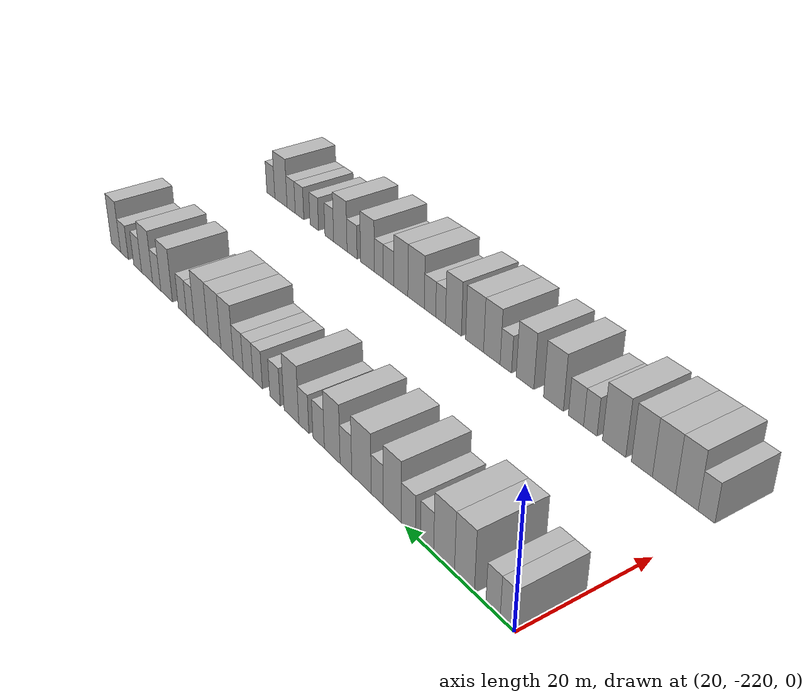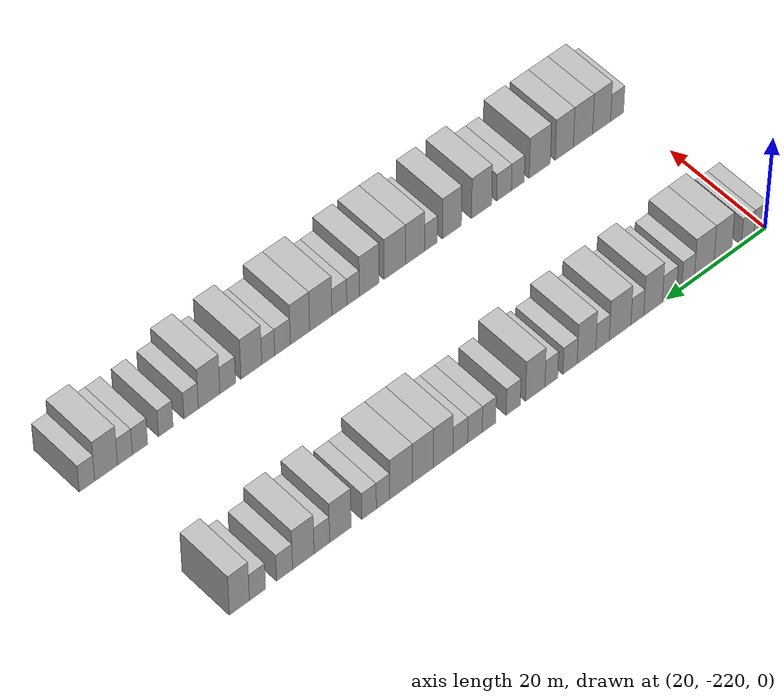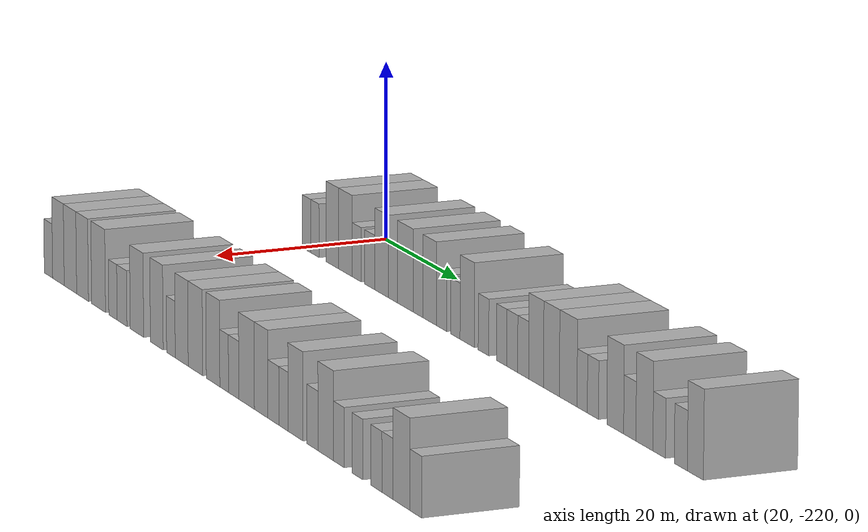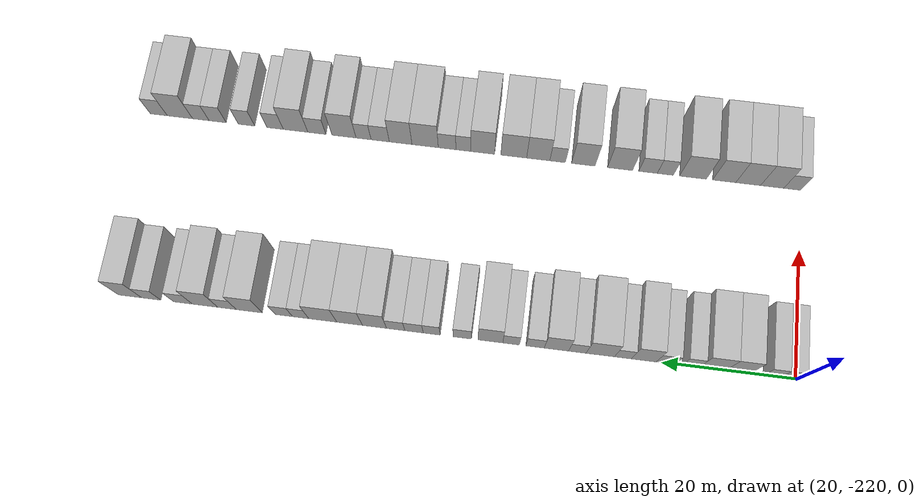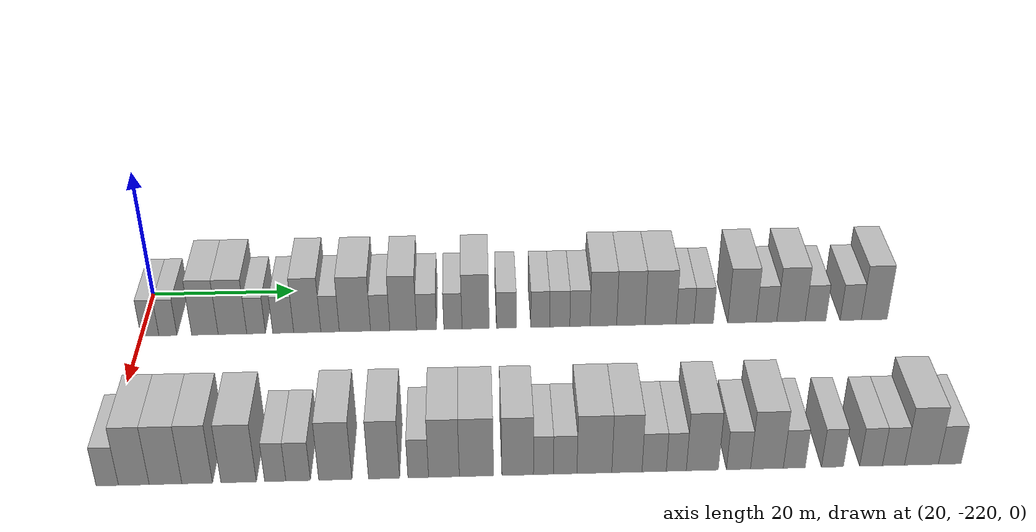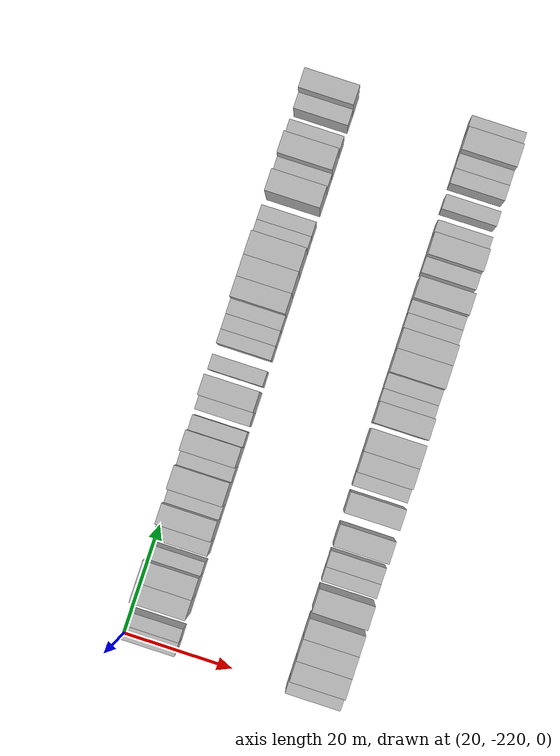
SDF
<sdf version="1.6">
 <world name="default">
  <model name="building_1">
   <static>1</static>
   <pose>25.0000 -218.7724 0 0.000000 0.000000 0.000000</pose>
   <link name="link">
    <pose>0 0 3.00 0 0 0</pose>
    <collision name="collision"><geometry><box><size>10.0000 2.4552 6.0000</size></box></geometry></collision>
    <visual name="visual">
     <cast_shadows>0</cast_shadows>
     <geometry><box><size>10.0000 2.4552 6.0000</size></box></geometry>
     <material>
      <script>
       <uri>model://HANNAS_wall/materials/scripts</uri>
       <uri>model://HANNAS_wall/materials/textures</uri>
       <name>vrc/HANNAS_wall</name>
      </script>
     </material>
    </visual>
   </link>
  </model>
  <model name="building_2">
   <static>1</static>
   <pose>25.0000 -216.3096 0 0.000000 0.000000 0.000000</pose>
   <link name="link">
    <pose>0 0 3.00 0 0 0</pose>
    <collision name="collision"><geometry><box><size>10.0000 2.4703 6.0000</size></box></geometry></collision>
    <visual name="visual">
     <cast_shadows>0</cast_shadows>
     <geometry><box><size>10.0000 2.4703 6.0000</size></box></geometry>
     <material>
      <script>
       <uri>model://HANNAS_wall/materials/scripts</uri>
       <uri>model://HANNAS_wall/materials/textures</uri>
       <name>vrc/HANNAS_wall</name>
      </script>
     </material>
    </visual>
   </link>
  </model>
  <model name="building_3">
   <static>1</static>
   <pose>25.0000 -211.2696 0 0.000000 0.000000 0.000000</pose>
   <link name="link">
    <pose>0 0 4.50 0 0 0</pose>
    <collision name="collision"><geometry><box><size>10.0000 3.6098 9.0000</size></box></geometry></collision>
    <visual name="visual">
     <cast_shadows>0</cast_shadows>
     <geometry><box><size>10.0000 3.6098 9.0000</size></box></geometry>
     <material>
      <script>
       <uri>model://HANNAS_wall/materials/scripts</uri>
       <uri>model://HANNAS_wall/materials/textures</uri>
       <name>vrc/HANNAS_wall</name>
      </script>
     </material>
    </visual>
   </link>
  </model>
  <model name="building_4">
   <static>1</static>
   <pose>25.0000 -207.5078 0 0.000000 0.000000 0.000000</pose>
   <link name="link">
    <pose>0 0 4.50 0 0 0</pose>
    <collision name="collision"><geometry><box><size>10.0000 3.9137 9.0000</size></box></geometry></collision>
    <visual name="visual">
     <cast_shadows>0</cast_shadows>
     <geometry><box><size>10.0000 3.9137 9.0000</size></box></geometry>
     <material>
      <script>
       <uri>model://HANNAS_wall/materials/scripts</uri>
       <uri>model://HANNAS_wall/materials/textures</uri>
       <name>vrc/HANNAS_wall</name>
      </script>
     </material>
    </visual>
   </link>
  </model>
  <model name="building_5">
   <static>1</static>
   <pose>25.0000 -204.2752 0 0.000000 0.000000 0.000000</pose>
   <link name="link">
    <pose>0 0 3.00 0 0 0</pose>
    <collision name="collision"><geometry><box><size>10.0000 2.5516 6.0000</size></box></geometry></collision>
    <visual name="visual">
     <cast_shadows>0</cast_shadows>
     <geometry><box><size>10.0000 2.5516 6.0000</size></box></geometry>
     <material>
      <script>
       <uri>model://HANNAS_wall/materials/scripts</uri>
       <uri>model://HANNAS_wall/materials/textures</uri>
       <name>vrc/HANNAS_wall</name>
      </script>
     </material>
    </visual>
   </link>
  </model>
  <model name="building_6">
   <static>1</static>
   <pose>25.0000 -200.5648 0 0.000000 0.000000 0.000000</pose>
   <link name="link">
    <pose>0 0 3.00 0 0 0</pose>
    <collision name="collision"><geometry><box><size>10.0000 2.8691 6.0000</size></box></geometry></collision>
    <visual name="visual">
     <cast_shadows>0</cast_shadows>
     <geometry><box><size>10.0000 2.8691 6.0000</size></box></geometry>
     <material>
      <script>
       <uri>model://HANNAS_wall/materials/scripts</uri>
       <uri>model://HANNAS_wall/materials/textures</uri>
       <name>vrc/HANNAS_wall</name>
      </script>
     </material>
    </visual>
   </link>
  </model>
  <model name="building_7">
   <static>1</static>
   <pose>25.0000 -197.2733 0 0.000000 0.000000 0.000000</pose>
   <link name="link">
    <pose>0 0 4.50 0 0 0</pose>
    <collision name="collision"><geometry><box><size>10.0000 3.7139 9.0000</size></box></geometry></collision>
    <visual name="visual">
     <cast_shadows>0</cast_shadows>
     <geometry><box><size>10.0000 3.7139 9.0000</size></box></geometry>
     <material>
      <script>
       <uri>model://HANNAS_wall/materials/scripts</uri>
       <uri>model://HANNAS_wall/materials/textures</uri>
       <name>vrc/HANNAS_wall</name>
      </script>
     </material>
    </visual>
   </link>
  </model>
  <model name="building_8">
   <static>1</static>
   <pose>25.0000 -194.1472 0 0.000000 0.000000 0.000000</pose>
   <link name="link">
    <pose>0 0 3.00 0 0 0</pose>
    <collision name="collision"><geometry><box><size>10.0000 2.5385 6.0000</size></box></geometry></collision>
    <visual name="visual">
     <cast_shadows>0</cast_shadows>
     <geometry><box><size>10.0000 2.5385 6.0000</size></box></geometry>
     <material>
      <script>
       <uri>model://HANNAS_wall/materials/scripts</uri>
       <uri>model://HANNAS_wall/materials/textures</uri>
       <name>vrc/HANNAS_wall</name>
      </script>
     </material>
    </visual>
   </link>
  </model>
  <model name="building_9">
   <static>1</static>
   <pose>25.0000 -190.7358 0 0.000000 0.000000 0.000000</pose>
   <link name="link">
    <pose>0 0 4.50 0 0 0</pose>
    <collision name="collision"><geometry><box><size>10.0000 4.2843 9.0000</size></box></geometry></collision>
    <visual name="visual">
     <cast_shadows>0</cast_shadows>
     <geometry><box><size>10.0000 4.2843 9.0000</size></box></geometry>
     <material>
      <script>
       <uri>model://HANNAS_wall/materials/scripts</uri>
       <uri>model://HANNAS_wall/materials/textures</uri>
       <name>vrc/HANNAS_wall</name>
      </script>
     </material>
    </visual>
   </link>
  </model>
  <model name="building_10">
   <static>1</static>
   <pose>25.0000 -187.2706 0 0.000000 0.000000 0.000000</pose>
   <link name="link">
    <pose>0 0 3.00 0 0 0</pose>
    <collision name="collision"><geometry><box><size>10.0000 2.6461 6.0000</size></box></geometry></collision>
    <visual name="visual">
     <cast_shadows>0</cast_shadows>
     <geometry><box><size>10.0000 2.6461 6.0000</size></box></geometry>
     <material>
      <script>
       <uri>model://HANNAS_wall/materials/scripts</uri>
       <uri>model://HANNAS_wall/materials/textures</uri>
       <name>vrc/HANNAS_wall</name>
      </script>
     </material>
    </visual>
   </link>
  </model>
  <model name="building_11">
   <static>1</static>
   <pose>25.0000 -184.1075 0 0.000000 0.000000 0.000000</pose>
   <link name="link">
    <pose>0 0 4.50 0 0 0</pose>
    <collision name="collision"><geometry><box><size>10.0000 3.6802 9.0000</size></box></geometry></collision>
    <visual name="visual">
     <cast_shadows>0</cast_shadows>
     <geometry><box><size>10.0000 3.6802 9.0000</size></box></geometry>
     <material>
      <script>
       <uri>model://HANNAS_wall/materials/scripts</uri>
       <uri>model://HANNAS_wall/materials/textures</uri>
       <name>vrc/HANNAS_wall</name>
      </script>
     </material>
    </visual>
   </link>
  </model>
  <model name="building_12">
   <static>1</static>
   <pose>25.0000 -180.8865 0 0.000000 0.000000 0.000000</pose>
   <link name="link">
    <pose>0 0 3.00 0 0 0</pose>
    <collision name="collision"><geometry><box><size>10.0000 2.7617 6.0000</size></box></geometry></collision>
    <visual name="visual">
     <cast_shadows>0</cast_shadows>
     <geometry><box><size>10.0000 2.7617 6.0000</size></box></geometry>
     <material>
      <script>
       <uri>model://HANNAS_wall/materials/scripts</uri>
       <uri>model://HANNAS_wall/materials/textures</uri>
       <name>vrc/HANNAS_wall</name>
      </script>
     </material>
    </visual>
   </link>
  </model>
  <model name="building_13">
   <static>1</static>
   <pose>25.0000 -177.2530 0 0.000000 0.000000 0.000000</pose>
   <link name="link">
    <pose>0 0 3.00 0 0 0</pose>
    <collision name="collision"><geometry><box><size>10.0000 2.5054 6.0000</size></box></geometry></collision>
    <visual name="visual">
     <cast_shadows>0</cast_shadows>
     <geometry><box><size>10.0000 2.5054 6.0000</size></box></geometry>
     <material>
      <script>
       <uri>model://HANNAS_wall/materials/scripts</uri>
       <uri>model://HANNAS_wall/materials/textures</uri>
       <name>vrc/HANNAS_wall</name>
      </script>
     </material>
    </visual>
   </link>
  </model>
  <model name="building_14">
   <static>1</static>
   <pose>25.0000 -174.1250 0 0.000000 0.000000 0.000000</pose>
   <link name="link">
    <pose>0 0 4.50 0 0 0</pose>
    <collision name="collision"><geometry><box><size>10.0000 3.7505 9.0000</size></box></geometry></collision>
    <visual name="visual">
     <cast_shadows>0</cast_shadows>
     <geometry><box><size>10.0000 3.7505 9.0000</size></box></geometry>
     <material>
      <script>
       <uri>model://HANNAS_wall/materials/scripts</uri>
       <uri>model://HANNAS_wall/materials/textures</uri>
       <name>vrc/HANNAS_wall</name>
      </script>
     </material>
    </visual>
   </link>
  </model>
  <model name="building_15">
   <static>1</static>
   <pose>25.0000 -169.8699 0 0.000000 0.000000 0.000000</pose>
   <link name="link">
    <pose>0 0 3.00 0 0 0</pose>
    <collision name="collision"><geometry><box><size>10.0000 2.7595 6.0000</size></box></geometry></collision>
    <visual name="visual">
     <cast_shadows>0</cast_shadows>
     <geometry><box><size>10.0000 2.7595 6.0000</size></box></geometry>
     <material>
      <script>
       <uri>model://HANNAS_wall/materials/scripts</uri>
       <uri>model://HANNAS_wall/materials/textures</uri>
       <name>vrc/HANNAS_wall</name>
      </script>
     </material>
    </visual>
   </link>
  </model>
  <model name="building_16">
   <static>1</static>
   <pose>25.0000 -165.1983 0 0.000000 0.000000 0.000000</pose>
   <link name="link">
    <pose>0 0 3.00 0 0 0</pose>
    <collision name="collision"><geometry><box><size>10.0000 2.5838 6.0000</size></box></geometry></collision>
    <visual name="visual">
     <cast_shadows>0</cast_shadows>
     <geometry><box><size>10.0000 2.5838 6.0000</size></box></geometry>
     <material>
      <script>
       <uri>model://HANNAS_wall/materials/scripts</uri>
       <uri>model://HANNAS_wall/materials/textures</uri>
       <name>vrc/HANNAS_wall</name>
      </script>
     </material>
    </visual>
   </link>
  </model>
  <model name="building_17">
   <static>1</static>
   <pose>25.0000 -162.5082 0 0.000000 0.000000 0.000000</pose>
   <link name="link">
    <pose>0 0 3.00 0 0 0</pose>
    <collision name="collision"><geometry><box><size>10.0000 2.7964 6.0000</size></box></geometry></collision>
    <visual name="visual">
     <cast_shadows>0</cast_shadows>
     <geometry><box><size>10.0000 2.7964 6.0000</size></box></geometry>
     <material>
      <script>
       <uri>model://HANNAS_wall/materials/scripts</uri>
       <uri>model://HANNAS_wall/materials/textures</uri>
       <name>vrc/HANNAS_wall</name>
      </script>
     </material>
    </visual>
   </link>
  </model>
  <model name="building_18">
   <static>1</static>
   <pose>25.0000 -159.7110 0 0.000000 0.000000 0.000000</pose>
   <link name="link">
    <pose>0 0 3.00 0 0 0</pose>
    <collision name="collision"><geometry><box><size>10.0000 2.7979 6.0000</size></box></geometry></collision>
    <visual name="visual">
     <cast_shadows>0</cast_shadows>
     <geometry><box><size>10.0000 2.7979 6.0000</size></box></geometry>
     <material>
      <script>
       <uri>model://HANNAS_wall/materials/scripts</uri>
       <uri>model://HANNAS_wall/materials/textures</uri>
       <name>vrc/HANNAS_wall</name>
      </script>
     </material>
    </visual>
   </link>
  </model>
  <model name="building_19">
   <static>1</static>
   <pose>25.0000 -156.4629 0 0.000000 0.000000 0.000000</pose>
   <link name="link">
    <pose>0 0 4.50 0 0 0</pose>
    <collision name="collision"><geometry><box><size>10.0000 3.6983 9.0000</size></box></geometry></collision>
    <visual name="visual">
     <cast_shadows>0</cast_shadows>
     <geometry><box><size>10.0000 3.6983 9.0000</size></box></geometry>
     <material>
      <script>
       <uri>model://HANNAS_wall/materials/scripts</uri>
       <uri>model://HANNAS_wall/materials/textures</uri>
       <name>vrc/HANNAS_wall</name>
      </script>
     </material>
    </visual>
   </link>
  </model>
  <model name="building_20">
   <static>1</static>
   <pose>25.0000 -152.6454 0 0.000000 0.000000 0.000000</pose>
   <link name="link">
    <pose>0 0 4.50 0 0 0</pose>
    <collision name="collision"><geometry><box><size>10.0000 3.9368 9.0000</size></box></geometry></collision>
    <visual name="visual">
     <cast_shadows>0</cast_shadows>
     <geometry><box><size>10.0000 3.9368 9.0000</size></box></geometry>
     <material>
      <script>
       <uri>model://HANNAS_wall/materials/scripts</uri>
       <uri>model://HANNAS_wall/materials/textures</uri>
       <name>vrc/HANNAS_wall</name>
      </script>
     </material>
    </visual>
   </link>
  </model>
  <model name="building_21">
   <static>1</static>
   <pose>25.0000 -148.5193 0 0.000000 0.000000 0.000000</pose>
   <link name="link">
    <pose>0 0 4.50 0 0 0</pose>
    <collision name="collision"><geometry><box><size>10.0000 4.3155 9.0000</size></box></geometry></collision>
    <visual name="visual">
     <cast_shadows>0</cast_shadows>
     <geometry><box><size>10.0000 4.3155 9.0000</size></box></geometry>
     <material>
      <script>
       <uri>model://HANNAS_wall/materials/scripts</uri>
       <uri>model://HANNAS_wall/materials/textures</uri>
       <name>vrc/HANNAS_wall</name>
      </script>
     </material>
    </visual>
   </link>
  </model>
  <model name="building_22">
   <static>1</static>
   <pose>25.0000 -145.1118 0 0.000000 0.000000 0.000000</pose>
   <link name="link">
    <pose>0 0 3.00 0 0 0</pose>
    <collision name="collision"><geometry><box><size>10.0000 2.4994 6.0000</size></box></geometry></collision>
    <visual name="visual">
     <cast_shadows>0</cast_shadows>
     <geometry><box><size>10.0000 2.4994 6.0000</size></box></geometry>
     <material>
      <script>
       <uri>model://HANNAS_wall/materials/scripts</uri>
       <uri>model://HANNAS_wall/materials/textures</uri>
       <name>vrc/HANNAS_wall</name>
      </script>
     </material>
    </visual>
   </link>
  </model>
  <model name="building_23">
   <static>1</static>
   <pose>25.0000 -142.5120 0 0.000000 0.000000 0.000000</pose>
   <link name="link">
    <pose>0 0 3.00 0 0 0</pose>
    <collision name="collision"><geometry><box><size>10.0000 2.7002 6.0000</size></box></geometry></collision>
    <visual name="visual">
     <cast_shadows>0</cast_shadows>
     <geometry><box><size>10.0000 2.7002 6.0000</size></box></geometry>
     <material>
      <script>
       <uri>model://HANNAS_wall/materials/scripts</uri>
       <uri>model://HANNAS_wall/materials/textures</uri>
       <name>vrc/HANNAS_wall</name>
      </script>
     </material>
    </visual>
   </link>
  </model>
  <model name="building_24">
   <static>1</static>
   <pose>25.0000 -137.1737 0 0.000000 0.000000 0.000000</pose>
   <link name="link">
    <pose>0 0 4.50 0 0 0</pose>
    <collision name="collision"><geometry><box><size>10.0000 3.9764 9.0000</size></box></geometry></collision>
    <visual name="visual">
     <cast_shadows>0</cast_shadows>
     <geometry><box><size>10.0000 3.9764 9.0000</size></box></geometry>
     <material>
      <script>
       <uri>model://HANNAS_wall/materials/scripts</uri>
       <uri>model://HANNAS_wall/materials/textures</uri>
       <name>vrc/HANNAS_wall</name>
      </script>
     </material>
    </visual>
   </link>
  </model>
  <model name="building_25">
   <static>1</static>
   <pose>25.0000 -133.7473 0 0.000000 0.000000 0.000000</pose>
   <link name="link">
    <pose>0 0 3.00 0 0 0</pose>
    <collision name="collision"><geometry><box><size>10.0000 2.8764 6.0000</size></box></geometry></collision>
    <visual name="visual">
     <cast_shadows>0</cast_shadows>
     <geometry><box><size>10.0000 2.8764 6.0000</size></box></geometry>
     <material>
      <script>
       <uri>model://HANNAS_wall/materials/scripts</uri>
       <uri>model://HANNAS_wall/materials/textures</uri>
       <name>vrc/HANNAS_wall</name>
      </script>
     </material>
    </visual>
   </link>
  </model>
  <model name="building_26">
   <static>1</static>
   <pose>25.0000 -130.3267 0 0.000000 0.000000 0.000000</pose>
   <link name="link">
    <pose>0 0 4.50 0 0 0</pose>
    <collision name="collision"><geometry><box><size>10.0000 3.9649 9.0000</size></box></geometry></collision>
    <visual name="visual">
     <cast_shadows>0</cast_shadows>
     <geometry><box><size>10.0000 3.9649 9.0000</size></box></geometry>
     <material>
      <script>
       <uri>model://HANNAS_wall/materials/scripts</uri>
       <uri>model://HANNAS_wall/materials/textures</uri>
       <name>vrc/HANNAS_wall</name>
      </script>
     </material>
    </visual>
   </link>
  </model>
  <model name="building_27">
   <static>1</static>
   <pose>25.0000 -126.8843 0 0.000000 0.000000 0.000000</pose>
   <link name="link">
    <pose>0 0 3.00 0 0 0</pose>
    <collision name="collision"><geometry><box><size>10.0000 2.9198 6.0000</size></box></geometry></collision>
    <visual name="visual">
     <cast_shadows>0</cast_shadows>
     <geometry><box><size>10.0000 2.9198 6.0000</size></box></geometry>
     <material>
      <script>
       <uri>model://HANNAS_wall/materials/scripts</uri>
       <uri>model://HANNAS_wall/materials/textures</uri>
       <name>vrc/HANNAS_wall</name>
      </script>
     </material>
    </visual>
   </link>
  </model>
  <model name="building_28">
   <static>1</static>
   <pose>25.0000 -121.9462 0 0.000000 0.000000 0.000000</pose>
   <link name="link">
    <pose>0 0 3.00 0 0 0</pose>
    <collision name="collision"><geometry><box><size>10.0000 2.9565 6.0000</size></box></geometry></collision>
    <visual name="visual">
     <cast_shadows>0</cast_shadows>
     <geometry><box><size>10.0000 2.9565 6.0000</size></box></geometry>
     <material>
      <script>
       <uri>model://HANNAS_wall/materials/scripts</uri>
       <uri>model://HANNAS_wall/materials/textures</uri>
       <name>vrc/HANNAS_wall</name>
      </script>
     </material>
    </visual>
   </link>
  </model>
  <model name="building_29">
   <static>1</static>
   <pose>25.0000 -118.6565 0 0.000000 0.000000 0.000000</pose>
   <link name="link">
    <pose>0 0 4.50 0 0 0</pose>
    <collision name="collision"><geometry><box><size>10.0000 3.6229 9.0000</size></box></geometry></collision>
    <visual name="visual">
     <cast_shadows>0</cast_shadows>
     <geometry><box><size>10.0000 3.6229 9.0000</size></box></geometry>
     <material>
      <script>
       <uri>model://HANNAS_wall/materials/scripts</uri>
       <uri>model://HANNAS_wall/materials/textures</uri>
       <name>vrc/HANNAS_wall</name>
      </script>
     </material>
    </visual>
   </link>
  </model>
  <model name="building_116">
   <static>1</static>
   <pose>55.0000 -218.6695 0 0.000000 0.000000 0.000000</pose>
   <link name="link">
    <pose>0 0 3.00 0 0 0</pose>
    <collision name="collision"><geometry><box><size>10.0000 2.6609 6.0000</size></box></geometry></collision>
    <visual name="visual">
     <cast_shadows>0</cast_shadows>
     <geometry><box><size>10.0000 2.6609 6.0000</size></box></geometry>
     <material>
      <script>
       <uri>model://HANNAS_wall/materials/scripts</uri>
       <uri>model://HANNAS_wall/materials/textures</uri>
       <name>vrc/HANNAS_wall</name>
      </script>
     </material>
    </visual>
   </link>
  </model>
  <model name="building_117">
   <static>1</static>
   <pose>55.0000 -215.5062 0 0.000000 0.000000 0.000000</pose>
   <link name="link">
    <pose>0 0 4.50 0 0 0</pose>
    <collision name="collision"><geometry><box><size>10.0000 3.6659 9.0000</size></box></geometry></collision>
    <visual name="visual">
     <cast_shadows>0</cast_shadows>
     <geometry><box><size>10.0000 3.6659 9.0000</size></box></geometry>
     <material>
      <script>
       <uri>model://HANNAS_wall/materials/scripts</uri>
       <uri>model://HANNAS_wall/materials/textures</uri>
       <name>vrc/HANNAS_wall</name>
      </script>
     </material>
    </visual>
   </link>
  </model>
  <model name="building_118">
   <static>1</static>
   <pose>55.0000 -211.7166 0 0.000000 0.000000 0.000000</pose>
   <link name="link">
    <pose>0 0 4.50 0 0 0</pose>
    <collision name="collision"><geometry><box><size>10.0000 3.9132 9.0000</size></box></geometry></collision>
    <visual name="visual">
     <cast_shadows>0</cast_shadows>
     <geometry><box><size>10.0000 3.9132 9.0000</size></box></geometry>
     <material>
      <script>
       <uri>model://HANNAS_wall/materials/scripts</uri>
       <uri>model://HANNAS_wall/materials/textures</uri>
       <name>vrc/HANNAS_wall</name>
      </script>
     </material>
    </visual>
   </link>
  </model>
  <model name="building_119">
   <static>1</static>
   <pose>55.0000 -207.9279 0 0.000000 0.000000 0.000000</pose>
   <link name="link">
    <pose>0 0 4.50 0 0 0</pose>
    <collision name="collision"><geometry><box><size>10.0000 3.6643 9.0000</size></box></geometry></collision>
    <visual name="visual">
     <cast_shadows>0</cast_shadows>
     <geometry><box><size>10.0000 3.6643 9.0000</size></box></geometry>
     <material>
      <script>
       <uri>model://HANNAS_wall/materials/scripts</uri>
       <uri>model://HANNAS_wall/materials/textures</uri>
       <name>vrc/HANNAS_wall</name>
      </script>
     </material>
    </visual>
   </link>
  </model>
  <model name="building_120">
   <static>1</static>
   <pose>55.0000 -202.9664 0 0.000000 0.000000 0.000000</pose>
   <link name="link">
    <pose>0 0 4.50 0 0 0</pose>
    <collision name="collision"><geometry><box><size>10.0000 4.2587 9.0000</size></box></geometry></collision>
    <visual name="visual">
     <cast_shadows>0</cast_shadows>
     <geometry><box><size>10.0000 4.2587 9.0000</size></box></geometry>
     <material>
      <script>
       <uri>model://HANNAS_wall/materials/scripts</uri>
       <uri>model://HANNAS_wall/materials/textures</uri>
       <name>vrc/HANNAS_wall</name>
      </script>
     </material>
    </visual>
   </link>
  </model>
  <model name="building_121">
   <static>1</static>
   <pose>55.0000 -198.5659 0 0.000000 0.000000 0.000000</pose>
   <link name="link">
    <pose>0 0 3.00 0 0 0</pose>
    <collision name="collision"><geometry><box><size>10.0000 2.5424 6.0000</size></box></geometry></collision>
    <visual name="visual">
     <cast_shadows>0</cast_shadows>
     <geometry><box><size>10.0000 2.5424 6.0000</size></box></geometry>
     <material>
      <script>
       <uri>model://HANNAS_wall/materials/scripts</uri>
       <uri>model://HANNAS_wall/materials/textures</uri>
       <name>vrc/HANNAS_wall</name>
      </script>
     </material>
    </visual>
   </link>
  </model>
  <model name="building_122">
   <static>1</static>
   <pose>55.0000 -195.8216 0 0.000000 0.000000 0.000000</pose>
   <link name="link">
    <pose>0 0 3.00 0 0 0</pose>
    <collision name="collision"><geometry><box><size>10.0000 2.9461 6.0000</size></box></geometry></collision>
    <visual name="visual">
     <cast_shadows>0</cast_shadows>
     <geometry><box><size>10.0000 2.9461 6.0000</size></box></geometry>
     <material>
      <script>
       <uri>model://HANNAS_wall/materials/scripts</uri>
       <uri>model://HANNAS_wall/materials/textures</uri>
       <name>vrc/HANNAS_wall</name>
      </script>
     </material>
    </visual>
   </link>
  </model>
  <model name="building_123">
   <static>1</static>
   <pose>55.0000 -191.3488 0 0.000000 0.000000 0.000000</pose>
   <link name="link">
    <pose>0 0 4.50 0 0 0</pose>
    <collision name="collision"><geometry><box><size>10.0000 3.9995 9.0000</size></box></geometry></collision>
    <visual name="visual">
     <cast_shadows>0</cast_shadows>
     <geometry><box><size>10.0000 3.9995 9.0000</size></box></geometry>
     <material>
      <script>
       <uri>model://HANNAS_wall/materials/scripts</uri>
       <uri>model://HANNAS_wall/materials/textures</uri>
       <name>vrc/HANNAS_wall</name>
      </script>
     </material>
    </visual>
   </link>
  </model>
  <model name="building_124">
   <static>1</static>
   <pose>55.0000 -185.4743 0 0.000000 0.000000 0.000000</pose>
   <link name="link">
    <pose>0 0 4.50 0 0 0</pose>
    <collision name="collision"><geometry><box><size>10.0000 3.7495 9.0000</size></box></geometry></collision>
    <visual name="visual">
     <cast_shadows>0</cast_shadows>
     <geometry><box><size>10.0000 3.7495 9.0000</size></box></geometry>
     <material>
      <script>
       <uri>model://HANNAS_wall/materials/scripts</uri>
       <uri>model://HANNAS_wall/materials/textures</uri>
       <name>vrc/HANNAS_wall</name>
      </script>
     </material>
    </visual>
   </link>
  </model>
  <model name="building_125">
   <static>1</static>
   <pose>55.0000 -181.3504 0 0.000000 0.000000 0.000000</pose>
   <link name="link">
    <pose>0 0 3.00 0 0 0</pose>
    <collision name="collision"><geometry><box><size>10.0000 2.4983 6.0000</size></box></geometry></collision>
    <visual name="visual">
     <cast_shadows>0</cast_shadows>
     <geometry><box><size>10.0000 2.4983 6.0000</size></box></geometry>
     <material>
      <script>
       <uri>model://HANNAS_wall/materials/scripts</uri>
       <uri>model://HANNAS_wall/materials/textures</uri>
       <name>vrc/HANNAS_wall</name>
      </script>
     </material>
    </visual>
   </link>
  </model>
  <model name="building_126">
   <static>1</static>
   <pose>55.0000 -178.2379 0 0.000000 0.000000 0.000000</pose>
   <link name="link">
    <pose>0 0 4.50 0 0 0</pose>
    <collision name="collision"><geometry><box><size>10.0000 3.7268 9.0000</size></box></geometry></collision>
    <visual name="visual">
     <cast_shadows>0</cast_shadows>
     <geometry><box><size>10.0000 3.7268 9.0000</size></box></geometry>
     <material>
      <script>
       <uri>model://HANNAS_wall/materials/scripts</uri>
       <uri>model://HANNAS_wall/materials/textures</uri>
       <name>vrc/HANNAS_wall</name>
      </script>
     </material>
    </visual>
   </link>
  </model>
  <model name="building_127">
   <static>1</static>
   <pose>55.0000 -174.3012 0 0.000000 0.000000 0.000000</pose>
   <link name="link">
    <pose>0 0 4.50 0 0 0</pose>
    <collision name="collision"><geometry><box><size>10.0000 4.1466 9.0000</size></box></geometry></collision>
    <visual name="visual">
     <cast_shadows>0</cast_shadows>
     <geometry><box><size>10.0000 4.1466 9.0000</size></box></geometry>
     <material>
      <script>
       <uri>model://HANNAS_wall/materials/scripts</uri>
       <uri>model://HANNAS_wall/materials/textures</uri>
       <name>vrc/HANNAS_wall</name>
      </script>
     </material>
    </visual>
   </link>
  </model>
  <model name="building_128">
   <static>1</static>
   <pose>55.0000 -169.3162 0 0.000000 0.000000 0.000000</pose>
   <link name="link">
    <pose>0 0 4.50 0 0 0</pose>
    <collision name="collision"><geometry><box><size>10.0000 3.8233 9.0000</size></box></geometry></collision>
    <visual name="visual">
     <cast_shadows>0</cast_shadows>
     <geometry><box><size>10.0000 3.8233 9.0000</size></box></geometry>
     <material>
      <script>
       <uri>model://HANNAS_wall/materials/scripts</uri>
       <uri>model://HANNAS_wall/materials/textures</uri>
       <name>vrc/HANNAS_wall</name>
      </script>
     </material>
    </visual>
   </link>
  </model>
  <model name="building_129">
   <static>1</static>
   <pose>55.0000 -166.1947 0 0.000000 0.000000 0.000000</pose>
   <link name="link">
    <pose>0 0 3.00 0 0 0</pose>
    <collision name="collision"><geometry><box><size>10.0000 2.4199 6.0000</size></box></geometry></collision>
    <visual name="visual">
     <cast_shadows>0</cast_shadows>
     <geometry><box><size>10.0000 2.4199 6.0000</size></box></geometry>
     <material>
      <script>
       <uri>model://HANNAS_wall/materials/scripts</uri>
       <uri>model://HANNAS_wall/materials/textures</uri>
       <name>vrc/HANNAS_wall</name>
      </script>
     </material>
    </visual>
   </link>
  </model>
  <model name="building_130">
   <static>1</static>
   <pose>55.0000 -163.5549 0 0.000000 0.000000 0.000000</pose>
   <link name="link">
    <pose>0 0 3.00 0 0 0</pose>
    <collision name="collision"><geometry><box><size>10.0000 2.8595 6.0000</size></box></geometry></collision>
    <visual name="visual">
     <cast_shadows>0</cast_shadows>
     <geometry><box><size>10.0000 2.8595 6.0000</size></box></geometry>
     <material>
      <script>
       <uri>model://HANNAS_wall/materials/scripts</uri>
       <uri>model://HANNAS_wall/materials/textures</uri>
       <name>vrc/HANNAS_wall</name>
      </script>
     </material>
    </visual>
   </link>
  </model>
  <model name="building_131">
   <static>1</static>
   <pose>55.0000 -159.9999 0 0.000000 0.000000 0.000000</pose>
   <link name="link">
    <pose>0 0 4.50 0 0 0</pose>
    <collision name="collision"><geometry><box><size>10.0000 4.2505 9.0000</size></box></geometry></collision>
    <visual name="visual">
     <cast_shadows>0</cast_shadows>
     <geometry><box><size>10.0000 4.2505 9.0000</size></box></geometry>
     <material>
      <script>
       <uri>model://HANNAS_wall/materials/scripts</uri>
       <uri>model://HANNAS_wall/materials/textures</uri>
       <name>vrc/HANNAS_wall</name>
      </script>
     </material>
    </visual>
   </link>
  </model>
  <model name="building_132">
   <static>1</static>
   <pose>55.0000 -156.0348 0 0.000000 0.000000 0.000000</pose>
   <link name="link">
    <pose>0 0 4.50 0 0 0</pose>
    <collision name="collision"><geometry><box><size>10.0000 3.6798 9.0000</size></box></geometry></collision>
    <visual name="visual">
     <cast_shadows>0</cast_shadows>
     <geometry><box><size>10.0000 3.6798 9.0000</size></box></geometry>
     <material>
      <script>
       <uri>model://HANNAS_wall/materials/scripts</uri>
       <uri>model://HANNAS_wall/materials/textures</uri>
       <name>vrc/HANNAS_wall</name>
      </script>
     </material>
    </visual>
   </link>
  </model>
  <model name="building_133">
   <static>1</static>
   <pose>55.0000 -152.7131 0 0.000000 0.000000 0.000000</pose>
   <link name="link">
    <pose>0 0 3.00 0 0 0</pose>
    <collision name="collision"><geometry><box><size>10.0000 2.9635 6.0000</size></box></geometry></collision>
    <visual name="visual">
     <cast_shadows>0</cast_shadows>
     <geometry><box><size>10.0000 2.9635 6.0000</size></box></geometry>
     <material>
      <script>
       <uri>model://HANNAS_wall/materials/scripts</uri>
       <uri>model://HANNAS_wall/materials/textures</uri>
       <name>vrc/HANNAS_wall</name>
      </script>
     </material>
    </visual>
   </link>
  </model>
  <model name="building_134">
   <static>1</static>
   <pose>55.0000 -150.0099 0 0.000000 0.000000 0.000000</pose>
   <link name="link">
    <pose>0 0 3.00 0 0 0</pose>
    <collision name="collision"><geometry><box><size>10.0000 2.4429 6.0000</size></box></geometry></collision>
    <visual name="visual">
     <cast_shadows>0</cast_shadows>
     <geometry><box><size>10.0000 2.4429 6.0000</size></box></geometry>
     <material>
      <script>
       <uri>model://HANNAS_wall/materials/scripts</uri>
       <uri>model://HANNAS_wall/materials/textures</uri>
       <name>vrc/HANNAS_wall</name>
      </script>
     </material>
    </visual>
   </link>
  </model>
  <model name="building_135">
   <static>1</static>
   <pose>55.0000 -146.8301 0 0.000000 0.000000 0.000000</pose>
   <link name="link">
    <pose>0 0 4.50 0 0 0</pose>
    <collision name="collision"><geometry><box><size>10.0000 3.9168 9.0000</size></box></geometry></collision>
    <visual name="visual">
     <cast_shadows>0</cast_shadows>
     <geometry><box><size>10.0000 3.9168 9.0000</size></box></geometry>
     <material>
      <script>
       <uri>model://HANNAS_wall/materials/scripts</uri>
       <uri>model://HANNAS_wall/materials/textures</uri>
       <name>vrc/HANNAS_wall</name>
      </script>
     </material>
    </visual>
   </link>
  </model>
  <model name="building_136">
   <static>1</static>
   <pose>55.0000 -142.3992 0 0.000000 0.000000 0.000000</pose>
   <link name="link">
    <pose>0 0 3.00 0 0 0</pose>
    <collision name="collision"><geometry><box><size>10.0000 2.9450 6.0000</size></box></geometry></collision>
    <visual name="visual">
     <cast_shadows>0</cast_shadows>
     <geometry><box><size>10.0000 2.9450 6.0000</size></box></geometry>
     <material>
      <script>
       <uri>model://HANNAS_wall/materials/scripts</uri>
       <uri>model://HANNAS_wall/materials/textures</uri>
       <name>vrc/HANNAS_wall</name>
      </script>
     </material>
    </visual>
   </link>
  </model>
  <model name="building_137">
   <static>1</static>
   <pose>55.0000 -138.9156 0 0.000000 0.000000 0.000000</pose>
   <link name="link">
    <pose>0 0 4.50 0 0 0</pose>
    <collision name="collision"><geometry><box><size>10.0000 4.0221 9.0000</size></box></geometry></collision>
    <visual name="visual">
     <cast_shadows>0</cast_shadows>
     <geometry><box><size>10.0000 4.0221 9.0000</size></box></geometry>
     <material>
      <script>
       <uri>model://HANNAS_wall/materials/scripts</uri>
       <uri>model://HANNAS_wall/materials/textures</uri>
       <name>vrc/HANNAS_wall</name>
      </script>
     </material>
    </visual>
   </link>
  </model>
  <model name="building_138">
   <static>1</static>
   <pose>55.0000 -135.5598 0 0.000000 0.000000 0.000000</pose>
   <link name="link">
    <pose>0 0 3.00 0 0 0</pose>
    <collision name="collision"><geometry><box><size>10.0000 2.6896 6.0000</size></box></geometry></collision>
    <visual name="visual">
     <cast_shadows>0</cast_shadows>
     <geometry><box><size>10.0000 2.6896 6.0000</size></box></geometry>
     <material>
      <script>
       <uri>model://HANNAS_wall/materials/scripts</uri>
       <uri>model://HANNAS_wall/materials/textures</uri>
       <name>vrc/HANNAS_wall</name>
      </script>
     </material>
    </visual>
   </link>
  </model>
  <model name="building_139">
   <static>1</static>
   <pose>55.0000 -130.8629 0 0.000000 0.000000 0.000000</pose>
   <link name="link">
    <pose>0 0 3.00 0 0 0</pose>
    <collision name="collision"><geometry><box><size>10.0000 2.7042 6.0000</size></box></geometry></collision>
    <visual name="visual">
     <cast_shadows>0</cast_shadows>
     <geometry><box><size>10.0000 2.7042 6.0000</size></box></geometry>
     <material>
      <script>
       <uri>model://HANNAS_wall/materials/scripts</uri>
       <uri>model://HANNAS_wall/materials/textures</uri>
       <name>vrc/HANNAS_wall</name>
      </script>
     </material>
    </visual>
   </link>
  </model>
  <model name="building_140">
   <static>1</static>
   <pose>55.0000 -126.1112 0 0.000000 0.000000 0.000000</pose>
   <link name="link">
    <pose>0 0 3.00 0 0 0</pose>
    <collision name="collision"><geometry><box><size>10.0000 2.7991 6.0000</size></box></geometry></collision>
    <visual name="visual">
     <cast_shadows>0</cast_shadows>
     <geometry><box><size>10.0000 2.7991 6.0000</size></box></geometry>
     <material>
      <script>
       <uri>model://HANNAS_wall/materials/scripts</uri>
       <uri>model://HANNAS_wall/materials/textures</uri>
       <name>vrc/HANNAS_wall</name>
      </script>
     </material>
    </visual>
   </link>
  </model>
  <model name="building_141">
   <static>1</static>
   <pose>55.0000 -123.3493 0 0.000000 0.000000 0.000000</pose>
   <link name="link">
    <pose>0 0 3.00 0 0 0</pose>
    <collision name="collision"><geometry><box><size>10.0000 2.7247 6.0000</size></box></geometry></collision>
    <visual name="visual">
     <cast_shadows>0</cast_shadows>
     <geometry><box><size>10.0000 2.7247 6.0000</size></box></geometry>
     <material>
      <script>
       <uri>model://HANNAS_wall/materials/scripts</uri>
       <uri>model://HANNAS_wall/materials/textures</uri>
       <name>vrc/HANNAS_wall</name>
      </script>
     </material>
    </visual>
   </link>
  </model>
  <model name="building_142">
   <static>1</static>
   <pose>55.0000 -119.8997 0 0.000000 0.000000 0.000000</pose>
   <link name="link">
    <pose>0 0 4.50 0 0 0</pose>
    <collision name="collision"><geometry><box><size>10.0000 4.1744 9.0000</size></box></geometry></collision>
    <visual name="visual">
     <cast_shadows>0</cast_shadows>
     <geometry><box><size>10.0000 4.1744 9.0000</size></box></geometry>
     <material>
      <script>
       <uri>model://HANNAS_wall/materials/scripts</uri>
       <uri>model://HANNAS_wall/materials/textures</uri>
       <name>vrc/HANNAS_wall</name>
      </script>
     </material>
    </visual>
   </link>
  </model>
  <model name="building_143">
   <static>1</static>
   <pose>55.0000 -116.4073 0 0.000000 0.000000 0.000000</pose>
   <link name="link">
    <pose>0 0 3.00 0 0 0</pose>
    <collision name="collision"><geometry><box><size>10.0000 2.8104 6.0000</size></box></geometry></collision>
    <visual name="visual">
     <cast_shadows>0</cast_shadows>
     <geometry><box><size>10.0000 2.8104 6.0000</size></box></geometry>
     <material>
      <script>
       <uri>model://HANNAS_wall/materials/scripts</uri>
       <uri>model://HANNAS_wall/materials/textures</uri>
       <name>vrc/HANNAS_wall</name>
      </script>
     </material>
    </visual>
   </link>
  </model>
 </world>
</sdf>
